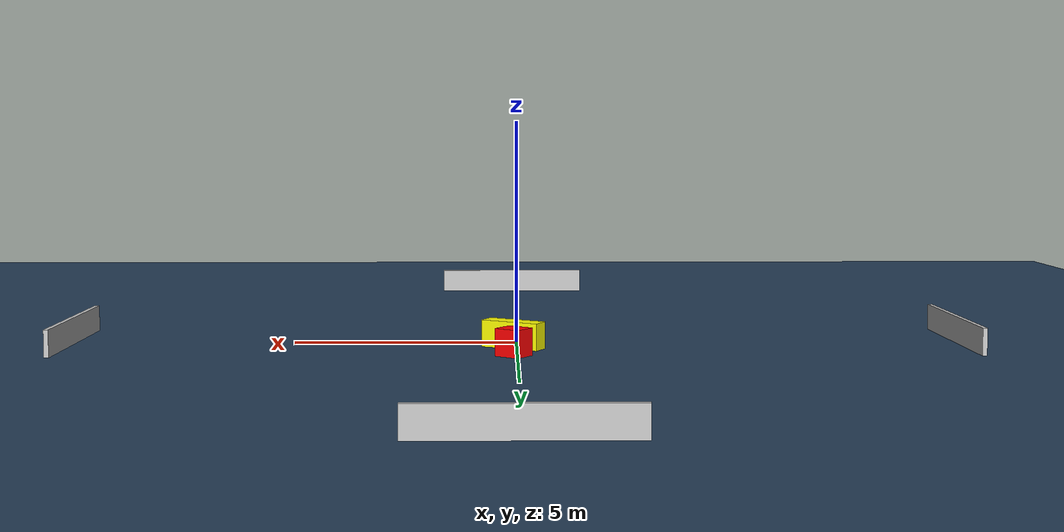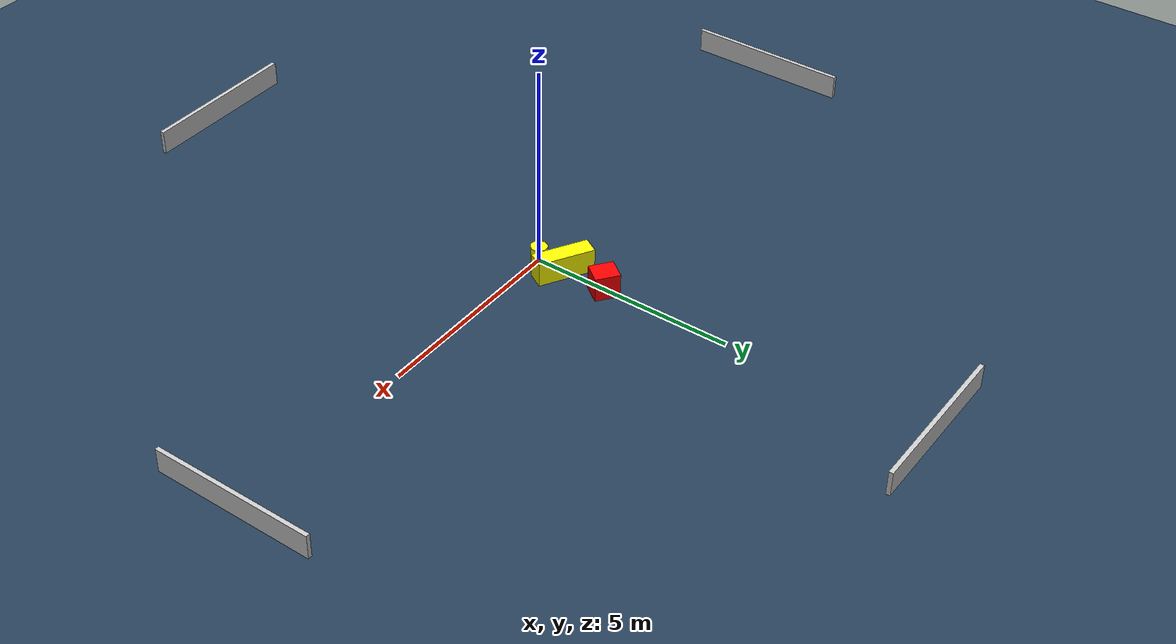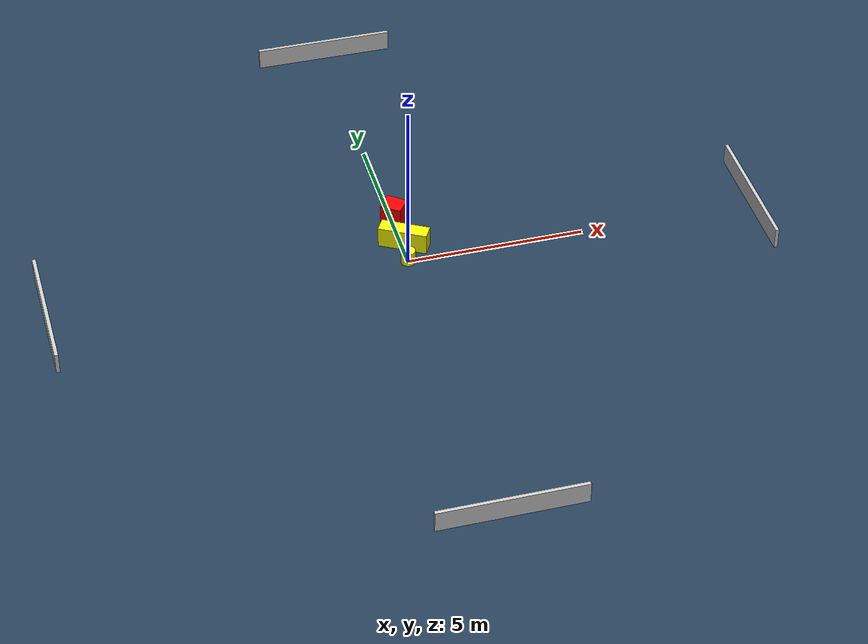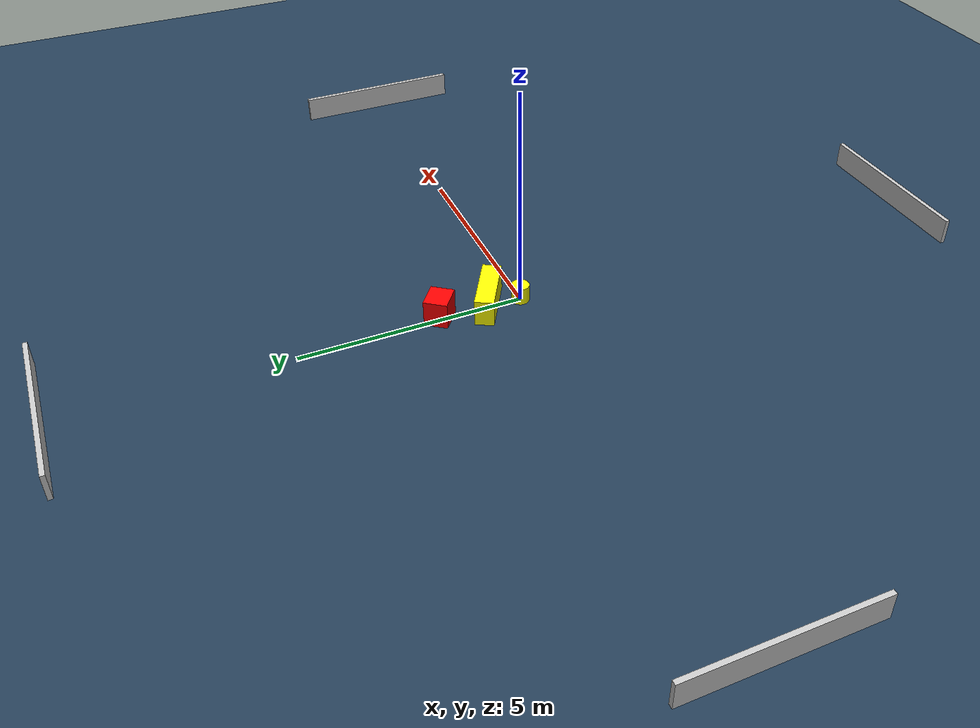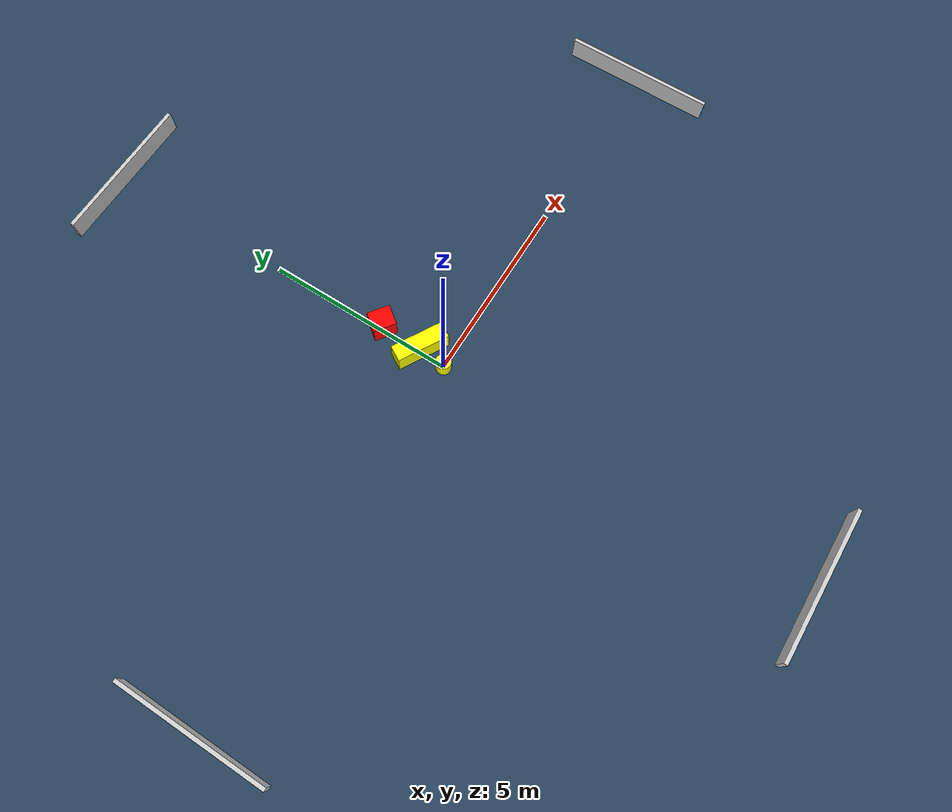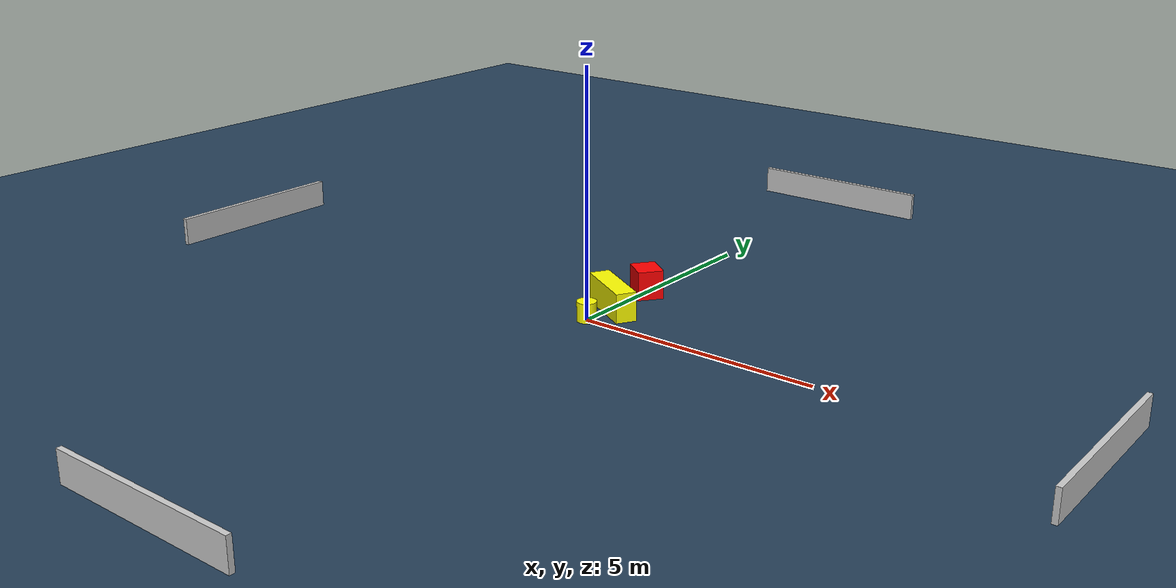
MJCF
<?xml version="1.0" ?>
<mujoco model="generated_environment">
  <option timestep="0.01" integrator="RK4" cone="elliptic"/>
  <default>
    <geom density="1"/>
  </default>
  <asset>
    <texture builtin="gradient" height="3072" name="skybox" rgb1="0.3 0.5 0.7" rgb2="0 0 0" type="skybox" width="512"/>
    <texture builtin="checker" height="300" name="groundplane" rgb1="0.2 0.3 0.4" rgb2="0.1 0.2 0.3" type="2d" width="300"/>
    <material name="groundplane" reflectance="0.2" texrepeat="5 5" texture="groundplane"/>
  </asset>
  <worldbody>
    <light dir="0 0 -1" directional="true" pos="0 0 1.5"/>
    <geom condim="3" friction="0.5 0.005 0.001" material="groundplane" name="floor" pos="0 0 0" size="0 0 0.05" type="plane"/>
    <body name="walls">
      <geom name="wall_1" condim="4" pos="-10.0 0.0 0.3" rgba="0.800000011920929 0.800000011920929 0.800000011920929 1.0" size="0.05 2.0 0.3" type="box"/>
      <geom name="wall_2" condim="4" pos="10.0 0.0 0.3" rgba="0.800000011920929 0.800000011920929 0.800000011920929 1.0" size="0.05 2.0 0.3" type="box"/>
      <geom name="wall_3" condim="4" pos="0.0 -10.0 0.3" rgba="0.800000011920929 0.800000011920929 0.800000011920929 1.0" size="2.0 0.05 0.3" type="box"/>
      <geom name="wall_4" condim="4" pos="0.0 10.0 0.3" rgba="0.800000011920929 0.800000011920929 0.800000011920929 1.0" size="2.0 0.05 0.3" type="box"/>
    </body>
    <body name="robot">
      <joint name="joint_x" type="slide" pos="0 0 0" axis="1 0 0"/>
      <joint name="joint_y" type="slide" pos="0 0 0" axis="0 1 0"/>
      <geom name="robot" type="cylinder" pos="0.0 0.0 0.2" size="0.2 0.2 0.0" mass="5.0" friction="1.0 0.005 0.0001" condim="4" rgba="1.0 1.0 0.0 1.0"/>
    </body>
    <body name="obstacle_1_movable">
      <geom name="obstacle_1_movable" condim="4" pos="0.07386362244543473 0.7264854633330388 0.3" euler="0 0 150.2317751440743" friction="0.0 0.005 0.001" rgba="1.0 1.0 0.0 1.0" size="0.6878869340281277 0.21190879417365405 0.3" type="box" mass="0.1"/>
      <joint type="free"/>
    </body>
    <body name="obstacle_2_static">
      <geom name="obstacle_2_static" condim="4" pos="0.07924908655065693 1.8551831286561455 0.3" euler="0 0 323.1347211874754" friction="0.0 0.005 0.001" rgba="1.0 0.0 0.0 1.0" size="0.29867802831891027 0.26442483134081507 0.3" type="box"/>
    </body>
  </worldbody>
  <actuator>
    <motor name="actuator_x" joint="joint_x" gear="1" ctrlrange="-1 1"/>
    <motor name="actuator_y" joint="joint_y" gear="1" ctrlrange="-1 1"/>
  </actuator>
</mujoco>
